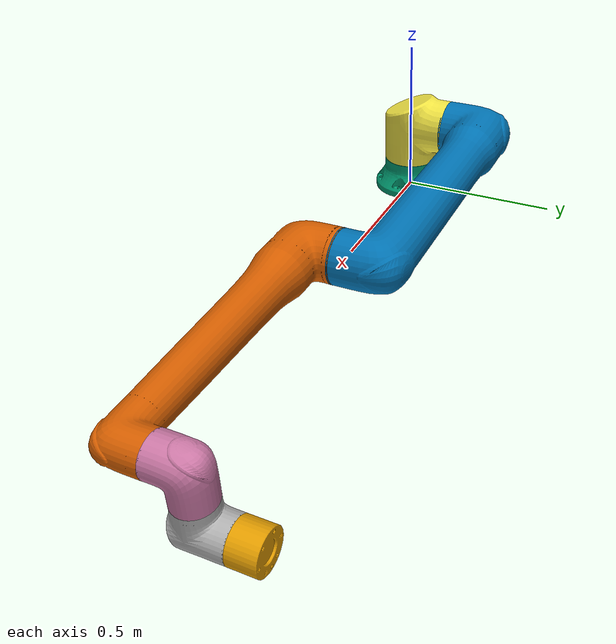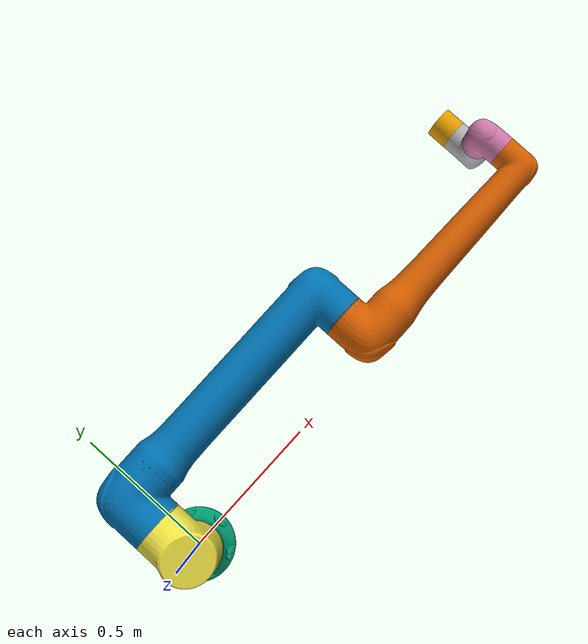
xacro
<?xml version="1.0"?>
<robot xmlns:xacro="http://www.ros.org/wiki/xacro" name="ur20">
    <xacro:arg name="initial_positions_file" default="initial_positions.yaml" />

    <!-- Import ur20 urdf file -->
    <xacro:include filename="ur20.urdf" />

    <!-- Import control_xacro -->
    <xacro:include filename="ur20.ros2_control.xacro" />

    <xacro:ur20_ros2_control name="FakeSystem" initial_positions_file="$(arg initial_positions_file)"/>

</robot>

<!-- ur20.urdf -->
<!-- |    This document was autogenerated by xacro from /home/michalpelka/testing_ws/src/Universal_Robots_ROS2_Description/urdf/ur.urdf.xacro | -->
<!-- |    EDITING THIS FILE BY HAND IS NOT RECOMMENDED                                 | -->
<robot name="ur20">
  <!-- create link fixed to the "world" -->
  <link name="world"/>
  <ros2_control name="ur20" type="system">
    <hardware>
      <plugin>mock_components/GenericSystem</plugin>
      <param name="fake_sensor_commands">False</param>
      <param name="state_following_offset">0.0</param>
    </hardware>
    <joint name="shoulder_pan_joint">
      <command_interface name="position">
        <param name="min">{-2*pi}</param>
        <param name="max">{2*pi}</param>
      </command_interface>
      <command_interface name="velocity">
        <param name="min">-3.15</param>
        <param name="max">3.15</param>
      </command_interface>
      <state_interface name="position">
        <!-- initial position for the FakeSystem and simulation -->
        <param name="initial_value">0.0</param>
      </state_interface>
      <state_interface name="velocity"/>
      <state_interface name="effort"/>
    </joint>
    <joint name="shoulder_lift_joint">
      <command_interface name="position">
        <param name="min">{-2*pi}</param>
        <param name="max">{2*pi}</param>
      </command_interface>
      <command_interface name="velocity">
        <param name="min">-3.15</param>
        <param name="max">3.15</param>
      </command_interface>
      <state_interface name="position">
        <!-- initial position for the FakeSystem and simulation -->
        <param name="initial_value">-1.57</param>
      </state_interface>
      <state_interface name="velocity"/>
      <state_interface name="effort"/>
    </joint>
    <joint name="elbow_joint">
      <command_interface name="position">
        <param name="min">{-pi}</param>
        <param name="max">{pi}</param>
      </command_interface>
      <command_interface name="velocity">
        <param name="min">-3.15</param>
        <param name="max">3.15</param>
      </command_interface>
      <state_interface name="position">
        <!-- initial position for the FakeSystem and simulation -->
        <param name="initial_value">0.0</param>
      </state_interface>
      <state_interface name="velocity"/>
      <state_interface name="effort"/>
    </joint>
    <joint name="wrist_1_joint">
      <command_interface name="position">
        <param name="min">{-2*pi}</param>
        <param name="max">{2*pi}</param>
      </command_interface>
      <command_interface name="velocity">
        <param name="min">-3.2</param>
        <param name="max">3.2</param>
      </command_interface>
      <state_interface name="position">
        <!-- initial position for the FakeSystem and simulation -->
        <param name="initial_value">-1.57</param>
      </state_interface>
      <state_interface name="velocity"/>
      <state_interface name="effort"/>
    </joint>
    <joint name="wrist_2_joint">
      <command_interface name="position">
        <param name="min">{-2*pi}</param>
        <param name="max">{2*pi}</param>
      </command_interface>
      <command_interface name="velocity">
        <param name="min">-3.2</param>
        <param name="max">3.2</param>
      </command_interface>
      <state_interface name="position">
        <!-- initial position for the FakeSystem and simulation -->
        <param name="initial_value">0.0</param>
      </state_interface>
      <state_interface name="velocity"/>
      <state_interface name="effort"/>
    </joint>
    <joint name="wrist_3_joint">
      <command_interface name="position">
        <param name="min">{-2*pi}</param>
        <param name="max">{2*pi}</param>
      </command_interface>
      <command_interface name="velocity">
        <param name="min">-3.2</param>
        <param name="max">3.2</param>
      </command_interface>
      <state_interface name="position">
        <!-- initial position for the FakeSystem and simulation -->
        <param name="initial_value">0.0</param>
      </state_interface>
      <state_interface name="velocity"/>
      <state_interface name="effort"/>
    </joint>
    <sensor name="tcp_fts_sensor">
      <state_interface name="force.x"/>
      <state_interface name="force.y"/>
      <state_interface name="force.z"/>
      <state_interface name="torque.x"/>
      <state_interface name="torque.y"/>
      <state_interface name="torque.z"/>
    </sensor>
    <!-- NOTE The following are joints used only for testing with fake hardware and will change in the future -->
    <gpio name="speed_scaling">
      <state_interface name="speed_scaling_factor"/>
      <param name="initial_speed_scaling_factor">1</param>
      <command_interface name="target_speed_fraction_cmd"/>
      <command_interface name="target_speed_fraction_async_success"/>
    </gpio>
    <gpio name="gpio">
      <command_interface name="standard_digital_output_cmd_0"/>
      <command_interface name="standard_digital_output_cmd_1"/>
      <command_interface name="standard_digital_output_cmd_2"/>
      <command_interface name="standard_digital_output_cmd_3"/>
      <command_interface name="standard_digital_output_cmd_4"/>
      <command_interface name="standard_digital_output_cmd_5"/>
      <command_interface name="standard_digital_output_cmd_6"/>
      <command_interface name="standard_digital_output_cmd_7"/>
      <command_interface name="standard_digital_output_cmd_8"/>
      <command_interface name="standard_digital_output_cmd_9"/>
      <command_interface name="standard_digital_output_cmd_10"/>
      <command_interface name="standard_digital_output_cmd_11"/>
      <command_interface name="standard_digital_output_cmd_12"/>
      <command_interface name="standard_digital_output_cmd_13"/>
      <command_interface name="standard_digital_output_cmd_14"/>
      <command_interface name="standard_digital_output_cmd_15"/>
      <command_interface name="standard_digital_output_cmd_16"/>
      <command_interface name="standard_digital_output_cmd_17"/>
      <command_interface name="standard_analog_output_cmd_0"/>
      <command_interface name="standard_analog_output_cmd_1"/>
      <command_interface name="tool_voltage_cmd"/>
      <command_interface name="io_async_success"/>
      <state_interface name="digital_output_0"/>
      <state_interface name="digital_output_1"/>
      <state_interface name="digital_output_2"/>
      <state_interface name="digital_output_3"/>
      <state_interface name="digital_output_4"/>
      <state_interface name="digital_output_5"/>
      <state_interface name="digital_output_6"/>
      <state_interface name="digital_output_7"/>
      <state_interface name="digital_output_8"/>
      <state_interface name="digital_output_9"/>
      <state_interface name="digital_output_10"/>
      <state_interface name="digital_output_11"/>
      <state_interface name="digital_output_12"/>
      <state_interface name="digital_output_13"/>
      <state_interface name="digital_output_14"/>
      <state_interface name="digital_output_15"/>
      <state_interface name="digital_output_16"/>
      <state_interface name="digital_output_17"/>
      <state_interface name="digital_input_0"/>
      <state_interface name="digital_input_1"/>
      <state_interface name="digital_input_2"/>
      <state_interface name="digital_input_3"/>
      <state_interface name="digital_input_4"/>
      <state_interface name="digital_input_5"/>
      <state_interface name="digital_input_6"/>
      <state_interface name="digital_input_7"/>
      <state_interface name="digital_input_8"/>
      <state_interface name="digital_input_9"/>
      <state_interface name="digital_input_10"/>
      <state_interface name="digital_input_11"/>
      <state_interface name="digital_input_12"/>
      <state_interface name="digital_input_13"/>
      <state_interface name="digital_input_14"/>
      <state_interface name="digital_input_15"/>
      <state_interface name="digital_input_16"/>
      <state_interface name="digital_input_17"/>
      <state_interface name="standard_analog_output_0"/>
      <state_interface name="standard_analog_output_1"/>
      <state_interface name="standard_analog_input_0"/>
      <state_interface name="standard_analog_input_1"/>
      <state_interface name="analog_io_type_0"/>
      <state_interface name="analog_io_type_1"/>
      <state_interface name="analog_io_type_2"/>
      <state_interface name="analog_io_type_3"/>
      <state_interface name="tool_mode"/>
      <state_interface name="tool_output_voltage"/>
      <state_interface name="tool_output_current"/>
      <state_interface name="tool_temperature"/>
      <state_interface name="tool_analog_input_0"/>
      <state_interface name="tool_analog_input_1"/>
      <state_interface name="tool_analog_input_type_0"/>
      <state_interface name="tool_analog_input_type_1"/>
      <state_interface name="robot_mode"/>
      <state_interface name="robot_status_bit_0"/>
      <state_interface name="robot_status_bit_1"/>
      <state_interface name="robot_status_bit_2"/>
      <state_interface name="robot_status_bit_3"/>
      <state_interface name="safety_mode"/>
      <state_interface name="safety_status_bit_0"/>
      <state_interface name="safety_status_bit_1"/>
      <state_interface name="safety_status_bit_2"/>
      <state_interface name="safety_status_bit_3"/>
      <state_interface name="safety_status_bit_4"/>
      <state_interface name="safety_status_bit_5"/>
      <state_interface name="safety_status_bit_6"/>
      <state_interface name="safety_status_bit_7"/>
      <state_interface name="safety_status_bit_8"/>
      <state_interface name="safety_status_bit_9"/>
      <state_interface name="safety_status_bit_10"/>
      <state_interface name="program_running"/>
    </gpio>
    <gpio name="payload">
      <command_interface name="mass"/>
      <command_interface name="cog.x"/>
      <command_interface name="cog.y"/>
      <command_interface name="cog.z"/>
      <command_interface name="payload_async_success"/>
    </gpio>
    <gpio name="resend_robot_program">
      <command_interface name="resend_robot_program_cmd"/>
      <command_interface name="resend_robot_program_async_success"/>
    </gpio>
    <gpio name="hand_back_control">
      <command_interface name="hand_back_control_cmd"/>
      <command_interface name="hand_back_control_async_success"/>
    </gpio>
    <gpio name="zero_ftsensor">
      <command_interface name="zero_ftsensor_cmd"/>
      <command_interface name="zero_ftsensor_async_success"/>
    </gpio>
    <gpio name="system_interface">
      <state_interface name="initialized"/>
    </gpio>
  </ros2_control>
  <!-- Add URDF transmission elements (for ros_control) -->
  <!-- Placeholder for ros2_control transmission which don't yet exist -->
  <!-- links -  main serial chain -->
  <link name="base_link"/>
  <link name="base_link_inertia">
    <visual>
      <origin rpy="0 0 3.141592653589793" xyz="0 0 0"/>
      <geometry>
        <mesh filename="package://ur_description/meshes/ur20/visual/base.dae"/>
      </geometry>
    </visual>
    <collision>
      <origin rpy="0 0 3.141592653589793" xyz="0 0 0"/>
      <geometry>
        <mesh filename="package://ur_description/meshes/ur20/collision/base.stl"/>
      </geometry>
    </collision>
    <inertial>
      <mass value="4.0"/>
      <origin rpy="0 0 0" xyz="0 0 0"/>
      <inertia ixx="0.0061063308908" ixy="0.0" ixz="0.0" iyy="0.0061063308908" iyz="0.0" izz="0.01125"/>
    </inertial>
  </link>
  <link name="shoulder_link">
    <visual>
      <origin rpy="0 0 3.141592653589793" xyz="0 0 0"/>
      <geometry>
        <mesh filename="package://ur_description/meshes/ur20/visual/shoulder.dae"/>
      </geometry>
    </visual>
    <collision>
      <origin rpy="0 0 3.141592653589793" xyz="0 0 0"/>
      <geometry>
        <mesh filename="package://ur_description/meshes/ur20/collision/shoulder.stl"/>
      </geometry>
    </collision>
    <inertial>
      <mass value="16.343"/>
      <origin rpy="0 0 0" xyz="0 0 0"/>
      <inertia ixx="0.06613328496334209" ixy="0.0" ixz="0.0" iyy="0.06613328496334209" iyz="0.0" izz="0.0459646875"/>
    </inertial>
  </link>
  <link name="upper_arm_link">
    <visual>
      <origin rpy="1.5707963267948966 0 -1.5707963267948966" xyz="0 0 0.26"/>
      <geometry>
        <mesh filename="package://ur_description/meshes/ur20/visual/upperarm.dae"/>
      </geometry>
    </visual>
    <collision>
      <origin rpy="1.5707963267948966 0 -1.5707963267948966" xyz="0 0 0.26"/>
      <geometry>
        <mesh filename="package://ur_description/meshes/ur20/collision/upperarm.stl"/>
      </geometry>
    </collision>
    <inertial>
      <mass value="29.632"/>
      <origin rpy="0 1.5707963267948966 0" xyz="-0.426 0.0 0.275"/>
      <inertia ixx="1.8341682103324226" ixy="0.0" ixz="0.0" iyy="1.8341682103324226" iyz="0.0" izz="0.08334"/>
    </inertial>
  </link>
  <link name="forearm_link">
    <visual>
      <origin rpy="1.5707963267948966 0 -1.5707963267948966" xyz="0 0 0.043"/>
      <geometry>
        <mesh filename="package://ur_description/meshes/ur20/visual/forearm.dae"/>
      </geometry>
    </visual>
    <collision>
      <origin rpy="1.5707963267948966 0 -1.5707963267948966" xyz="0 0 0.043"/>
      <geometry>
        <mesh filename="package://ur_description/meshes/ur20/collision/forearm.stl"/>
      </geometry>
    </collision>
    <inertial>
      <mass value="7.879"/>
      <origin rpy="0 1.5707963267948966 0" xyz="-0.36435 0.0 0.043"/>
      <inertia ixx="0.35972787265129336" ixy="0.0" ixz="0.0" iyy="0.35972787265129336" iyz="0.0" izz="0.022159687499999997"/>
    </inertial>
  </link>
  <link name="wrist_1_link">
    <visual>
      <origin rpy="1.5707963267948966 0 0" xyz="0 0 -0.0775"/>
      <geometry>
        <mesh filename="package://ur_description/meshes/ur20/visual/wrist1.dae"/>
      </geometry>
    </visual>
    <collision>
      <origin rpy="1.5707963267948966 0 0" xyz="0 0 -0.0775"/>
      <geometry>
        <mesh filename="package://ur_description/meshes/ur20/collision/wrist1.stl"/>
      </geometry>
    </collision>
    <inertial>
      <mass value="3.054"/>
      <origin rpy="0 0 0" xyz="0 0 0"/>
      <inertia ixx="0.007959484316204999" ixy="0.0" ixz="0.0" iyy="0.007959484316204999" iyz="0.0" izz="0.008589374999999998"/>
    </inertial>
  </link>
  <link name="wrist_2_link">
    <visual>
      <origin rpy="0 0 0" xyz="0 0 -0.0749"/>
      <geometry>
        <mesh filename="package://ur_description/meshes/ur20/visual/wrist2.dae"/>
      </geometry>
    </visual>
    <collision>
      <origin rpy="0 0 0" xyz="0 0 -0.0749"/>
      <geometry>
        <mesh filename="package://ur_description/meshes/ur20/collision/wrist2.stl"/>
      </geometry>
    </collision>
    <inertial>
      <mass value="3.126"/>
      <origin rpy="0 0 0" xyz="0 0 0"/>
      <inertia ixx="0.008147134241144998" ixy="0.0" ixz="0.0" iyy="0.008147134241144998" iyz="0.0" izz="0.008791875"/>
    </inertial>
  </link>
  <link name="wrist_3_link">
    <visual>
      <origin rpy="1.5707963267948966 0 0" xyz="0 0 -0.07"/>
      <geometry>
        <mesh filename="package://ur_description/meshes/ur20/visual/wrist3.dae"/>
      </geometry>
    </visual>
    <collision>
      <origin rpy="1.5707963267948966 0 0" xyz="0 0 -0.07"/>
      <geometry>
        <mesh filename="package://ur_description/meshes/ur20/collision/wrist3.stl"/>
      </geometry>
    </collision>
    <inertial>
      <mass value="0.846"/>
      <origin rpy="0 0 0" xyz="0.0 0.0 -0.025"/>
      <inertia ixx="0.000604537258185" ixy="0.0" ixz="0.0" iyy="0.000604537258185" iyz="0.0" izz="0.0008565749999999999"/>
    </inertial>
  </link>
  <!-- base_joint fixes base_link to the environment -->
  <joint name="base_joint" type="fixed">
    <origin rpy="0 0 0" xyz="0 0 0"/>
    <parent link="world"/>
    <child link="base_link"/>
  </joint>
  <!-- joints - main serial chain -->
  <joint name="base_link-base_link_inertia" type="fixed">
    <parent link="base_link"/>
    <child link="base_link_inertia"/>
    <origin rpy="0 0 3.141592653589793" xyz="0 0 0"/>
  </joint>
  <joint name="shoulder_pan_joint" type="revolute">
    <parent link="base_link_inertia"/>
    <child link="shoulder_link"/>
    <origin rpy="0 0 0" xyz="0 0 0.2363"/>
    <axis xyz="0 0 1"/>
    <limit effort="330.0" lower="-6.283185307179586" upper="6.283185307179586" velocity="2.2689280275926285"/>
    <dynamics damping="0" friction="0"/>
  </joint>
  <joint name="shoulder_lift_joint" type="revolute">
    <parent link="shoulder_link"/>
    <child link="upper_arm_link"/>
    <origin rpy="1.570796327 0 0" xyz="0 0 0"/>
    <axis xyz="0 0 1"/>
    <limit effort="330.0" lower="-6.283185307179586" upper="6.283185307179586" velocity="2.2689280275926285"/>
    <dynamics damping="0" friction="0"/>
  </joint>
  <joint name="elbow_joint" type="revolute">
    <parent link="upper_arm_link"/>
    <child link="forearm_link"/>
    <origin rpy="0 0 0" xyz="-0.862 0 0"/>
    <axis xyz="0 0 1"/>
    <limit effort="150.0" lower="-3.141592653589793" upper="3.141592653589793" velocity="2.792526803190927"/>
    <dynamics damping="0" friction="0"/>
  </joint>
  <joint name="wrist_1_joint" type="revolute">
    <parent link="forearm_link"/>
    <child link="wrist_1_link"/>
    <origin rpy="0 0 0" xyz="-0.7287 0 0.201"/>
    <axis xyz="0 0 1"/>
    <limit effort="56.0" lower="-6.283185307179586" upper="6.283185307179586" velocity="3.839724354387525"/>
    <dynamics damping="0" friction="0"/>
  </joint>
  <joint name="wrist_2_joint" type="revolute">
    <parent link="wrist_1_link"/>
    <child link="wrist_2_link"/>
    <origin rpy="1.570796327 0 0" xyz="0 -0.1593 -3.267297616249225e-11"/>
    <axis xyz="0 0 1"/>
    <limit effort="56.0" lower="-6.283185307179586" upper="6.283185307179586" velocity="3.839724354387525"/>
    <dynamics damping="0" friction="0"/>
  </joint>
  <joint name="wrist_3_joint" type="revolute">
    <parent link="wrist_2_link"/>
    <child link="wrist_3_link"/>
    <origin rpy="1.570796326589793 3.141592653589793 3.141592653589793" xyz="0 0.1543 -3.1647459019915597e-11"/>
    <axis xyz="0 0 1"/>
    <limit effort="56.0" lower="-6.283185307179586" upper="6.283185307179586" velocity="3.839724354387525"/>
    <dynamics damping="0" friction="0"/>
  </joint>
  <link name="ft_frame"/>
  <joint name="wrist_3_link-ft_frame" type="fixed">
    <parent link="wrist_3_link"/>
    <child link="ft_frame"/>
    <origin rpy="3.141592653589793 0 0" xyz="0 0 0"/>
  </joint>
  <!-- ROS-Industrial 'base' frame - base_link to UR 'Base' Coordinates transform -->
  <link name="base"/>
  <joint name="base_link-base_fixed_joint" type="fixed">
    <origin rpy="0 0 3.141592653589793" xyz="0 0 0"/>
    <parent link="base_link"/>
    <child link="base"/>
  </joint>
  <!-- ROS-Industrial 'flange' frame - attachment point for EEF models -->
  <link name="flange"/>
  <joint name="wrist_3-flange" type="fixed">
    <parent link="wrist_3_link"/>
    <child link="flange"/>
    <origin rpy="0 -1.5707963267948966 -1.5707963267948966" xyz="0 0 0"/>
  </joint>
  <!-- ROS-Industrial 'tool0' frame - all-zeros tool frame -->
  <link name="tool0"/>
  <joint name="flange-tool0" type="fixed">
    <!-- default toolframe - X+ left, Y+ up, Z+ front -->
    <origin rpy="1.5707963267948966 0 1.5707963267948966" xyz="0 0 0"/>
    <parent link="flange"/>
    <child link="tool0"/>
  </joint>
</robot>
